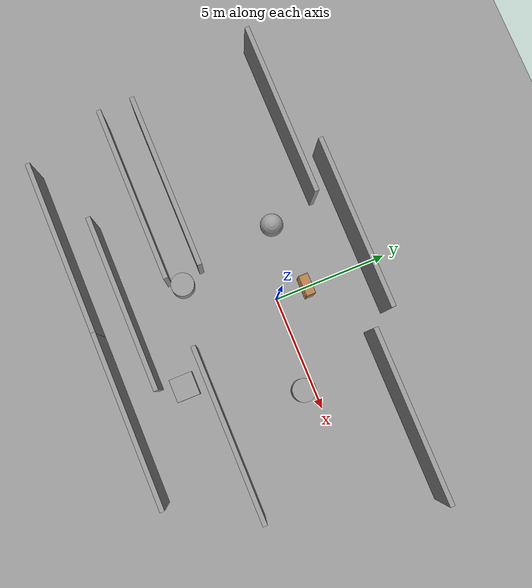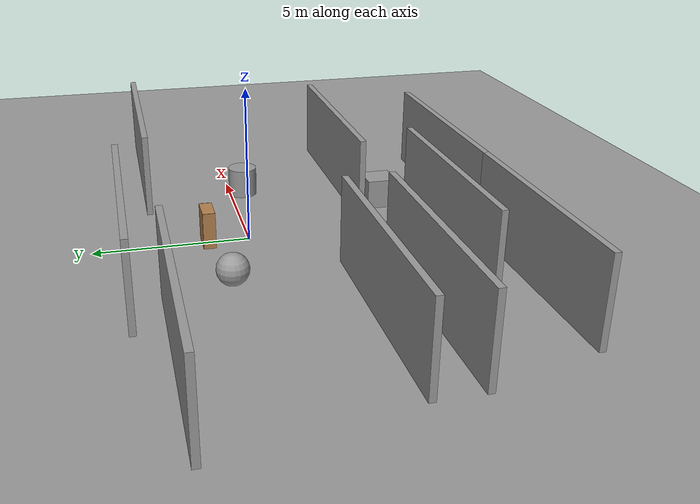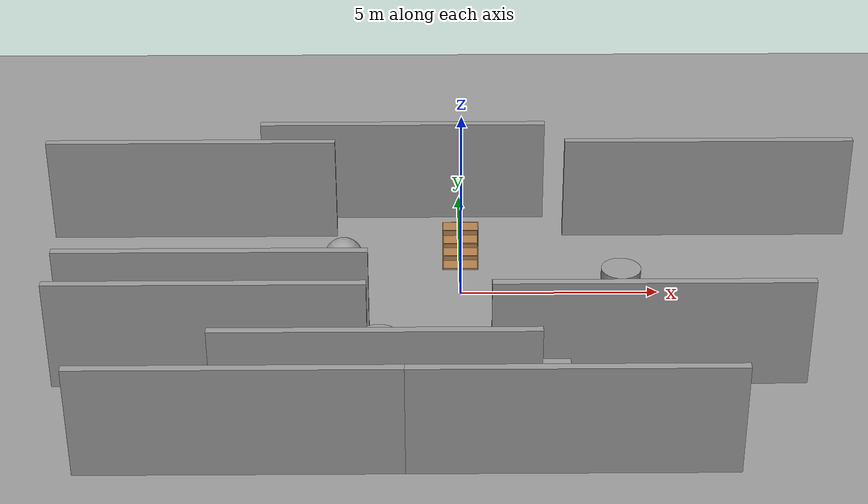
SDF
<sdf version="1.4">
 <world name="default">
  <light name="sun" type="directional">
   <pose>0 0 10 0 -0 0</pose>
   <diffuse>0.8 0.8 0.8 1</diffuse>
   <specular>0.2 0.2 0.2 1</specular>
   <attenuation>
    <range>1000</range>
    <constant>0.9</constant>
    <linear>0.01</linear>
    <quadratic>0.001</quadratic>
   </attenuation>
   <direction>0.5 0.1 -0.9</direction>
  </light>
  <physics type="ode">
   <max_step_size>0.001</max_step_size>
   <real_time_factor>1</real_time_factor>
   <real_time_update_rate>1000</real_time_update_rate>
   <gravity>0 0 -9.8</gravity>
  </physics>
  <scene><ambient>0.4 0.4 0.4 1</ambient><background>0.7 0.7 0.7 1</background><shadows>1</shadows></scene>
  <model name="bookshelf">
   <static>1</static>
   <link name="link">
    <inertial><mass>1</mass></inertial>
    <collision name="back">
     <pose>0 0.005 0.6 0 -0 0</pose>
     <geometry><box><size>0.9 0.01 1.2</size></box></geometry>
    </collision>
    <visual name="visual1">
     <pose>0 0.005 0.6 0 -0 0</pose>
     <geometry><box><size>0.9 0.01 1.2</size></box></geometry>
     <material>
      <script><uri>file://media/materials/scripts/gazebo.material</uri><name>Gazebo/Wood</name></script>
     </material>
    </visual>
    <collision name="left_side">
     <pose>0.45 -0.195 0.6 0 -0 0</pose>
     <geometry><box><size>0.02 0.4 1.2</size></box></geometry>
    </collision>
    <visual name="visual2">
     <pose>0.45 -0.195 0.6 0 -0 0</pose>
     <geometry><box><size>0.02 0.4 1.2</size></box></geometry>
     <material>
      <script><uri>file://media/materials/scripts/gazebo.material</uri><name>Gazebo/Wood</name></script>
     </material>
    </visual>
    <collision name="right_side">
     <pose>-0.45 -0.195 0.6 0 -0 0</pose>
     <geometry><box><size>0.02 0.4 1.2</size></box></geometry>
    </collision>
    <visual name="visual3">
     <pose>-0.45 -0.195 0.6 0 -0 0</pose>
     <geometry><box><size>0.02 0.4 1.2</size></box></geometry>
     <material>
      <script><uri>file://media/materials/scripts/gazebo.material</uri><name>Gazebo/Wood</name></script>
     </material>
    </visual>
    <collision name="bottom">
     <pose>0 -0.195 0.03 0 -0 0</pose>
     <geometry><box><size>0.88 0.4 0.06</size></box></geometry>
    </collision>
    <visual name="visual4">
     <pose>0 -0.195 0.03 0 -0 0</pose>
     <geometry><box><size>0.88 0.4 0.06</size></box></geometry>
     <material>
      <script><uri>file://media/materials/scripts/gazebo.material</uri><name>Gazebo/Wood</name></script>
     </material>
    </visual>
    <collision name="top">
     <pose>0 -0.195 1.19 0 -0 0</pose>
     <geometry><box><size>0.88 0.4 0.02</size></box></geometry>
    </collision>
    <visual name="visual5">
     <pose>0 -0.195 1.19 0 -0 0</pose>
     <geometry><box><size>0.88 0.4 0.02</size></box></geometry>
     <material>
      <script><uri>file://media/materials/scripts/gazebo.material</uri><name>Gazebo/Wood</name></script>
     </material>
    </visual>
    <collision name="low_shelf">
     <pose>0 -0.195 0.43 0 -0 0</pose>
     <geometry><box><size>0.88 0.4 0.02</size></box></geometry>
    </collision>
    <visual name="visual6">
     <pose>0 -0.195 0.43 0 -0 0</pose>
     <geometry><box><size>0.88 0.4 0.02</size></box></geometry>
     <material>
      <script><uri>file://media/materials/scripts/gazebo.material</uri><name>Gazebo/Wood</name></script>
     </material>
    </visual>
    <collision name="high_shelf">
     <pose>0 -0.195 0.8 0 -0 0</pose>
     <geometry><box><size>0.88 0.4 0.02</size></box></geometry>
    </collision>
    <visual name="visual7">
     <pose>0 -0.195 0.8 0 -0 0</pose>
     <geometry><box><size>0.88 0.4 0.02</size></box></geometry>
     <material>
      <script><uri>file://media/materials/scripts/gazebo.material</uri><name>Gazebo/Wood</name></script>
     </material>
    </visual>
    <velocity_decay><linear>0</linear><angular>0</angular></velocity_decay>
   </link>
   <pose>0 1.53026 0 0 -0 0</pose>
  </model>
  <model name="ground_plane_0">
   <static>1</static>
   <link name="link">
    <collision name="collision">
     <geometry><plane><normal>0 0 1</normal><size>100 100</size></plane></geometry>
     <surface><friction><ode><mu>100</mu><mu2>50</mu2></ode></friction></surface>
    </collision>
    <visual name="visual">
     <cast_shadows>0</cast_shadows>
     <geometry><plane><normal>0 0 1</normal><size>100 100</size></plane></geometry>
     <material>
      <script><uri>file://media/materials/scripts/gazebo.material</uri><name>Gazebo/Grey</name></script>
     </material>
    </visual>
    <velocity_decay><linear>0</linear><angular>0</angular></velocity_decay>
   </link>
   <pose>0.497681 0 0 0 -0 0</pose>
  </model>
  <model name="grey_wall">
   <static>1</static>
   <link name="link">
    <pose>0 0 1.4 0 -0 0</pose>
    <collision name="collision"><geometry><box><size>7.5 0.2 2.8</size></box></geometry></collision>
    <visual name="visual">
     <cast_shadows>0</cast_shadows>
     <geometry><box><size>7.5 0.2 2.8</size></box></geometry>
     <material>
      <script>
       <uri>model://grey_wall/materials/scripts</uri>
       <uri>model://grey_wall/materials/textures</uri>
       <name>vrc/grey_wall</name>
      </script>
     </material>
    </visual>
    <velocity_decay><linear>0</linear><angular>0</angular></velocity_decay>
   </link>
   <pose>-2 -6 0 0 -0 0</pose>
  </model>
  <model name="grey_wall_0">
   <static>1</static>
   <link name="link">
    <pose>0 0 1.4 0 -0 0</pose>
    <collision name="collision"><geometry><box><size>7.5 0.2 2.8</size></box></geometry></collision>
    <visual name="visual">
     <cast_shadows>0</cast_shadows>
     <geometry><box><size>7.5 0.2 2.8</size></box></geometry>
     <material>
      <script>
       <uri>model://grey_wall/materials/scripts</uri>
       <uri>model://grey_wall/materials/textures</uri>
       <name>vrc/grey_wall</name>
      </script>
     </material>
    </visual>
    <velocity_decay><linear>0</linear><angular>0</angular></velocity_decay>
   </link>
   <pose>-1.49883 4 0 0 -0 0</pose>
  </model>
  <model name="grey_wall_1">
   <static>1</static>
   <link name="link">
    <pose>0 0 1.4 0 -0 0</pose>
    <collision name="collision"><geometry><box><size>7.5 0.2 2.8</size></box></geometry></collision>
    <visual name="visual">
     <cast_shadows>0</cast_shadows>
     <geometry><box><size>7.5 0.2 2.8</size></box></geometry>
     <material>
      <script>
       <uri>model://grey_wall/materials/scripts</uri>
       <uri>model://grey_wall/materials/textures</uri>
       <name>vrc/grey_wall</name>
      </script>
     </material>
    </visual>
    <velocity_decay><linear>0</linear><angular>0</angular></velocity_decay>
   </link>
   <pose>4.41692 -4 0 0 -0 0</pose>
  </model>
  <model name="grey_wall_2">
   <static>1</static>
   <link name="link">
    <pose>0 0 1.4 0 -0 0</pose>
    <collision name="collision"><geometry><box><size>7.5 0.2 2.8</size></box></geometry></collision>
    <visual name="visual">
     <cast_shadows>0</cast_shadows>
     <geometry><box><size>7.5 0.2 2.8</size></box></geometry>
     <material>
      <script>
       <uri>model://grey_wall/materials/scripts</uri>
       <uri>model://grey_wall/materials/textures</uri>
       <name>vrc/grey_wall</name>
      </script>
     </material>
    </visual>
    <velocity_decay><linear>0</linear><angular>0</angular></velocity_decay>
   </link>
   <pose>2.42193 -7.48457 0 0 -0 0</pose>
  </model>
  <model name="grey_wall_3">
   <static>1</static>
   <link name="link">
    <pose>0 0 1.4 0 -0 0</pose>
    <collision name="collision"><geometry><box><size>7.5 0.2 2.8</size></box></geometry></collision>
    <visual name="visual">
     <cast_shadows>0</cast_shadows>
     <geometry><box><size>7.5 0.2 2.8</size></box></geometry>
     <material>
      <script>
       <uri>model://grey_wall/materials/scripts</uri>
       <uri>model://grey_wall/materials/textures</uri>
       <name>vrc/grey_wall</name>
      </script>
     </material>
    </visual>
    <velocity_decay><linear>0</linear><angular>0</angular></velocity_decay>
   </link>
   <pose>-5 -7.48385 0 0 -0 0</pose>
  </model>
  <model name="grey_wall_4">
   <static>1</static>
   <link name="link">
    <pose>0 0 1.4 0 -0 0</pose>
    <collision name="collision"><geometry><box><size>7.5 0.2 2.8</size></box></geometry></collision>
    <visual name="visual">
     <cast_shadows>0</cast_shadows>
     <geometry><box><size>7.5 0.2 2.8</size></box></geometry>
     <material>
      <script>
       <uri>model://grey_wall/materials/scripts</uri>
       <uri>model://grey_wall/materials/textures</uri>
       <name>vrc/grey_wall</name>
      </script>
     </material>
    </visual>
    <velocity_decay><linear>0</linear><angular>0</angular></velocity_decay>
   </link>
   <pose>-6 -4 0 0 -0 0</pose>
  </model>
  <model name="grey_wall_5">
   <static>1</static>
   <link name="link">
    <pose>0 0 1.4 0 -0 0</pose>
    <collision name="collision"><geometry><box><size>7.5 0.2 2.8</size></box></geometry></collision>
    <visual name="visual">
     <cast_shadows>0</cast_shadows>
     <geometry><box><size>7.5 0.2 2.8</size></box></geometry>
     <material>
      <script>
       <uri>model://grey_wall/materials/scripts</uri>
       <uri>model://grey_wall/materials/textures</uri>
       <name>vrc/grey_wall</name>
      </script>
     </material>
    </visual>
    <velocity_decay><linear>0</linear><angular>0</angular></velocity_decay>
   </link>
   <pose>-6 -2.53511 0 0 -0 0</pose>
  </model>
  <model name="grey_wall_6">
   <static>1</static>
   <link name="link">
    <pose>0 0 1.4 0 -0 0</pose>
    <collision name="collision"><geometry><box><size>7.5 0.2 2.8</size></box></geometry></collision>
    <visual name="visual">
     <cast_shadows>0</cast_shadows>
     <geometry><box><size>7.5 0.2 2.8</size></box></geometry>
     <material>
      <script>
       <uri>model://grey_wall/materials/scripts</uri>
       <uri>model://grey_wall/materials/textures</uri>
       <name>vrc/grey_wall</name>
      </script>
     </material>
    </visual>
    <velocity_decay><linear>0</linear><angular>0</angular></velocity_decay>
   </link>
   <pose>6.48248 3 0 0 -0 0</pose>
  </model>
  <model name="grey_wall_7">
   <static>1</static>
   <link name="link">
    <pose>0 0 1.4 0 -0 0</pose>
    <collision name="collision"><geometry><box><size>7.5 0.2 2.8</size></box></geometry></collision>
    <visual name="visual">
     <cast_shadows>0</cast_shadows>
     <geometry><box><size>7.5 0.2 2.8</size></box></geometry>
     <material>
      <script>
       <uri>model://grey_wall/materials/scripts</uri>
       <uri>model://grey_wall/materials/textures</uri>
       <name>vrc/grey_wall</name>
      </script>
     </material>
    </visual>
    <velocity_decay><linear>0</linear><angular>0</angular></velocity_decay>
   </link>
   <pose>-7 3 0 0 -0 0</pose>
  </model>
  <model name="unit_sphere_1">
   <pose>-3 1 0.5 0 -0 0</pose>
   <link name="link">
    <inertial>
     <mass>1</mass>
     <inertia><ixx>1</ixx><ixy>0</ixy><ixz>0</ixz><iyy>1</iyy><iyz>0</iyz><izz>1</izz></inertia>
    </inertial>
    <collision name="collision"><geometry><sphere><radius>0.5</radius></sphere></geometry></collision>
    <visual name="visual">
     <geometry><sphere><radius>0.5</radius></sphere></geometry>
     <material>
      <script><uri>file://media/materials/scripts/gazebo.material</uri><name>Gazebo/Grey</name></script>
     </material>
    </visual>
    <velocity_decay><linear>0</linear><angular>0</angular></velocity_decay>
   </link>
   <static>0</static>
  </model>
  <model name="unit_cylinder_1">
   <pose>-2 -3.4888 0.5 0 -0 0</pose>
   <link name="link">
    <inertial>
     <mass>1</mass>
     <inertia><ixx>1</ixx><ixy>0</ixy><ixz>0</ixz><iyy>1</iyy><iyz>0</iyz><izz>1</izz></inertia>
    </inertial>
    <collision name="collision">
     <geometry><cylinder><radius>0.5</radius><length>1</length></cylinder></geometry>
    </collision>
    <visual name="visual">
     <geometry><cylinder><radius>0.5</radius><length>1</length></cylinder></geometry>
     <material>
      <script><uri>file://media/materials/scripts/gazebo.material</uri><name>Gazebo/Grey</name></script>
     </material>
    </visual>
    <velocity_decay><linear>0</linear><angular>0</angular></velocity_decay>
   </link>
   <static>0</static>
  </model>
  <model name="unit_cylinder_2">
   <pose>4 -0.459734 0.5 0 -0 0</pose>
   <link name="link">
    <inertial>
     <mass>1</mass>
     <inertia><ixx>1</ixx><ixy>0</ixy><ixz>0</ixz><iyy>1</iyy><iyz>0</iyz><izz>1</izz></inertia>
    </inertial>
    <collision name="collision">
     <geometry><cylinder><radius>0.5</radius><length>1</length></cylinder></geometry>
    </collision>
    <visual name="visual">
     <geometry><cylinder><radius>0.5</radius><length>1</length></cylinder></geometry>
     <material>
      <script><uri>file://media/materials/scripts/gazebo.material</uri><name>Gazebo/Grey</name></script>
     </material>
    </visual>
    <velocity_decay><linear>0</linear><angular>0</angular></velocity_decay>
   </link>
   <static>0</static>
  </model>
  <model name="unit_box_1">
   <pose>2 -5 0.5 0 -0 0</pose>
   <link name="link">
    <inertial>
     <mass>1</mass>
     <inertia><ixx>1</ixx><ixy>0</ixy><ixz>0</ixz><iyy>1</iyy><iyz>0</iyz><izz>1</izz></inertia>
    </inertial>
    <collision name="collision"><geometry><box><size>1 1 1</size></box></geometry></collision>
    <visual name="visual">
     <geometry><box><size>1 1 1</size></box></geometry>
     <material>
      <script><uri>file://media/materials/scripts/gazebo.material</uri><name>Gazebo/Grey</name></script>
     </material>
    </visual>
    <velocity_decay><linear>0</linear><angular>0</angular></velocity_decay>
   </link>
   <static>0</static>
  </model>
 </world>
</sdf>
